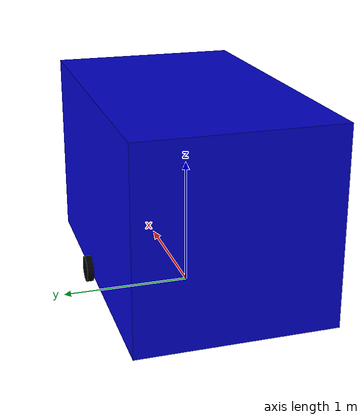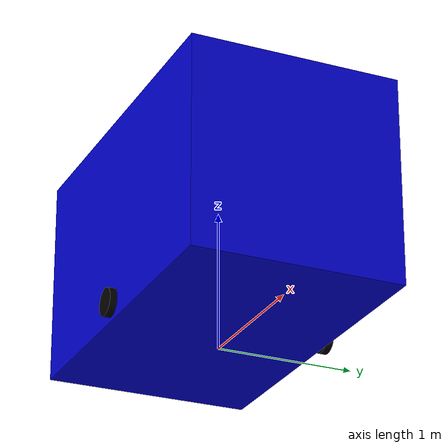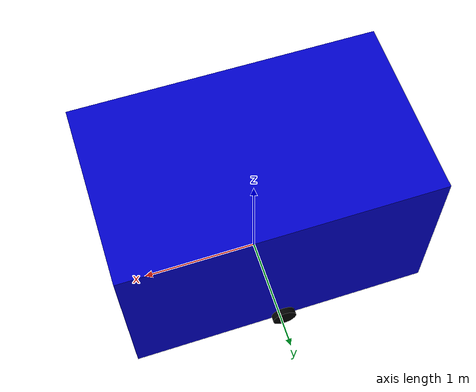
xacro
<?xml version="1.0"?>
<robot name="box_robot" xmlns:xacro="http://www.ros.org/wiki/xacro">

  <xacro:arg name="robot_name" default="robot"/>
  <xacro:arg name="has_lidar" default="false"/>

  <!-- Define colors -->
  <material name="blue">
    <color rgba="0.0 0.0 0.8 1.0"/>
  </material>

  <material name="red">
    <color rgba="0.8 0.0 0.0 1.0"/>
  </material>

  <material name="black">
    <color rgba="0.0 0.0 0.0 1.0"/>
  </material>

  <!-- Base Link -->
  <link name="base_footprint"/>

  <!-- Base Link -->
  <link name="base_link">
    <visual>
      <origin xyz="0 0 0.75" rpy="0 0 0"/>
      <geometry>
        <box size="2.5 1.5 1.5"/>
      </geometry>
      <material name="blue"/>
    </visual>
    <collision>
      <origin xyz="0 0 0.75" rpy="0 0 0"/>
      <geometry>
        <box size="2.5 1.5 1.5"/>
      </geometry>
    </collision>
    <inertial>
      <origin xyz="0 0 0.75" rpy="0 0 0"/>
      <mass value="50.0"/>
      <inertia ixx="15.625" ixy="0" ixz="0" iyy="28.125" iyz="0" izz="16.666"/>
    </inertial>
  </link>

  <joint name="base_joint" type="fixed">
    <parent link="base_footprint"/>
    <child link="base_link"/>
    <origin xyz="0.0 0.0 0.1" rpy="0 0 0"/>
  </joint>

  <!-- Left Wheel -->
  <link name="left_wheel">
    <visual>
      <origin xyz="0 0 0" rpy="1.5707 0 0"/>
      <geometry>
        <cylinder radius="0.1" length="0.05"/>
      </geometry>
      <material name="black"/>
    </visual>
    <collision>
      <origin xyz="0 0 0" rpy="1.5707 0 0"/>
      <geometry>
        <cylinder radius="0.1" length="0.05"/>
      </geometry>
    </collision>
    <inertial>
      <origin xyz="0 0 0" rpy="1.5707 0 0"/>
      <mass value="1.0"/>
      <inertia ixx="0.00104" ixy="0" ixz="0" iyy="0.00104" iyz="0" izz="0.005"/>
    </inertial>
  </link>

  <joint name="left_wheel_joint" type="continuous">
    <parent link="base_link"/>
    <child link="left_wheel"/>
    <origin xyz="0.0 0.8 0.1" rpy="0 0 0"/>
    <axis xyz="0 1 0"/>
  </joint>

  <!-- Right Wheel -->
  <link name="right_wheel">
    <visual>
      <origin xyz="0 0 0" rpy="1.5707 0 0"/>
      <geometry>
        <cylinder radius="0.1" length="0.05"/>
      </geometry>
      <material name="black"/>
    </visual>
    <collision>
      <origin xyz="0 0 0" rpy="1.5707 0 0"/>
      <geometry>
        <cylinder radius="0.1" length="0.05"/>
      </geometry>
    </collision>
    <inertial>
      <origin xyz="0 0 0" rpy="1.5707 0 0"/>
      <mass value="1.0"/>
      <inertia ixx="0.00104" ixy="0" ixz="0" iyy="0.00104" iyz="0" izz="0.005"/>
    </inertial>
  </link>

  <joint name="right_wheel_joint" type="continuous">
    <parent link="base_link"/>
    <child link="right_wheel"/>
    <origin xyz="0.0 -0.8 0.1" rpy="0 0 0"/>
    <axis xyz="0 1 0"/>
  </joint>

  <!-- Caster Wheel Front -->
  <link name="caster_front">
    <visual>
      <origin xyz="0 0 0" rpy="0 0 0"/>
      <geometry>
        <sphere radius="0.05"/>
      </geometry>
      <material name="black"/>
    </visual>
    <collision>
      <origin xyz="0 0 0" rpy="0 0 0"/>
      <geometry>
        <sphere radius="0.05"/>
      </geometry>
    </collision>
    <inertial>
      <origin xyz="0 0 0" rpy="0 0 0"/>
      <mass value="0.5"/>
      <inertia ixx="0.0005" ixy="0" ixz="0" iyy="0.0005" iyz="0" izz="0.0005"/>
    </inertial>
  </link>

  <joint name="caster_front_joint" type="fixed">
    <parent link="base_link"/>
    <child link="caster_front"/>
    <origin xyz="1.1 0.0 0.05" rpy="0 0 0"/>
  </joint>

  <!-- Caster Wheel Back -->
  <link name="caster_back">
    <visual>
      <origin xyz="0 0 0" rpy="0 0 0"/>
      <geometry>
        <sphere radius="0.05"/>
      </geometry>
      <material name="black"/>
    </visual>
    <collision>
      <origin xyz="0 0 0" rpy="0 0 0"/>
      <geometry>
        <sphere radius="0.05"/>
      </geometry>
    </collision>
    <inertial>
      <origin xyz="0 0 0" rpy="0 0 0"/>
      <mass value="0.5"/>
      <inertia ixx="0.0005" ixy="0" ixz="0" iyy="0.0005" iyz="0" izz="0.0005"/>
    </inertial>
  </link>

  <joint name="caster_back_joint" type="fixed">
    <parent link="base_link"/>
    <child link="caster_back"/>
    <origin xyz="-1.1 0.0 0.05" rpy="0 0 0"/>
  </joint>

  <!-- LIDAR Link (only if has_lidar is true) -->
  <xacro:if value="$(arg has_lidar)">
    <link name="lidar_link">
      <visual>
        <origin xyz="0 0 0" rpy="0 0 0"/>
        <geometry>
          <cylinder radius="0.05" length="0.1"/>
        </geometry>
        <material name="red"/>
      </visual>
      <collision>
        <origin xyz="0 0 0" rpy="0 0 0"/>
        <geometry>
          <cylinder radius="0.05" length="0.1"/>
        </geometry>
      </collision>
      <inertial>
        <origin xyz="0 0 0" rpy="0 0 0"/>
        <mass value="0.2"/>
        <inertia ixx="0.0002" ixy="0" ixz="0" iyy="0.0002" iyz="0" izz="0.00025"/>
      </inertial>
    </link>

    <joint name="lidar_joint" type="fixed">
      <parent link="base_link"/>
      <child link="lidar_link"/>
      <origin xyz="0.0 0.0 1.55" rpy="0 0 0"/>
    </joint>
  </xacro:if>

</robot>
